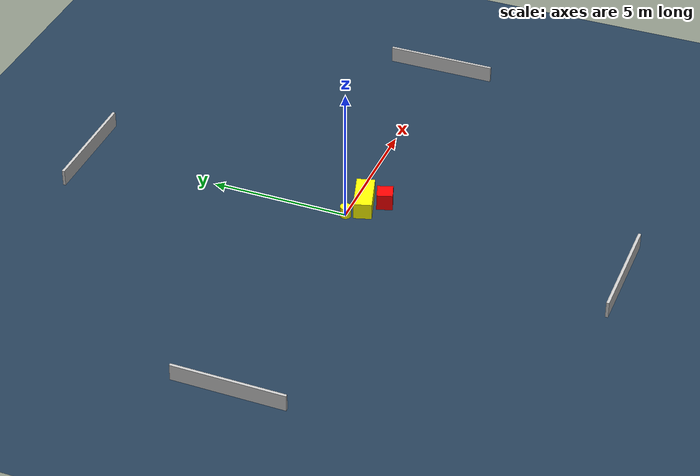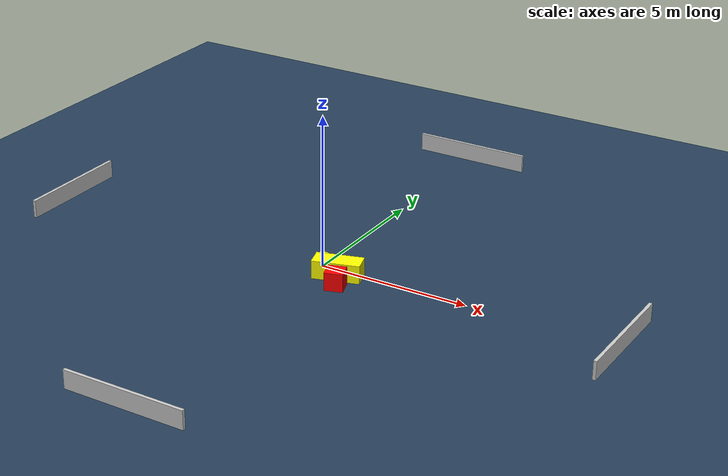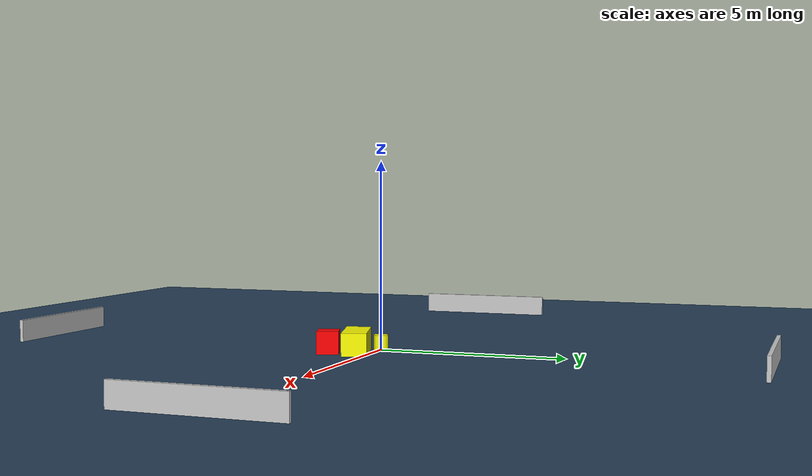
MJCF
<?xml version="1.0" ?>
<mujoco model="generated_environment">
  <option timestep="0.01" integrator="RK4" cone="elliptic"/>
  <default>
    <geom density="1"/>
  </default>
  <asset>
    <texture builtin="gradient" height="3072" name="skybox" rgb1="0.3 0.5 0.7" rgb2="0 0 0" type="skybox" width="512"/>
    <texture builtin="checker" height="300" name="groundplane" rgb1="0.2 0.3 0.4" rgb2="0.1 0.2 0.3" type="2d" width="300"/>
    <material name="groundplane" reflectance="0.2" texrepeat="5 5" texture="groundplane"/>
  </asset>
  <worldbody>
    <light dir="0 0 -1" directional="true" pos="0 0 1.5"/>
    <geom condim="3" friction="0.5 0.005 0.001" material="groundplane" name="floor" pos="0 0 0" size="0 0 0.05" type="plane"/>
    <body name="walls">
      <geom name="wall_1" condim="4" pos="-10.0 0.0 0.3" rgba="0.800000011920929 0.800000011920929 0.800000011920929 1.0" size="0.05 2.0 0.3" type="box"/>
      <geom name="wall_2" condim="4" pos="10.0 0.0 0.3" rgba="0.800000011920929 0.800000011920929 0.800000011920929 1.0" size="0.05 2.0 0.3" type="box"/>
      <geom name="wall_3" condim="4" pos="0.0 -10.0 0.3" rgba="0.800000011920929 0.800000011920929 0.800000011920929 1.0" size="2.0 0.05 0.3" type="box"/>
      <geom name="wall_4" condim="4" pos="0.0 10.0 0.3" rgba="0.800000011920929 0.800000011920929 0.800000011920929 1.0" size="2.0 0.05 0.3" type="box"/>
    </body>
    <body name="robot">
      <joint name="joint_x" type="slide" pos="0 0 0" axis="1 0 0"/>
      <joint name="joint_y" type="slide" pos="0 0 0" axis="0 1 0"/>
      <geom name="robot" type="cylinder" pos="0.0 0.0 0.2" size="0.2 0.2 0.0" mass="5.0" friction="1.0 0.005 0.0001" condim="4" rgba="1.0 1.0 0.0 1.0"/>
    </body>
    <body name="obstacle_1_movable">
      <geom name="obstacle_1_movable" condim="4" pos="0.7799657678024026 -0.39169430188205406 0.3" euler="0 0 16.513169403241783" friction="0.0 0.005 0.001" rgba="1.0 1.0 0.0 1.0" size="0.7663486641953956 0.32767700830561997 0.3" type="box" mass="0.1"/>
      <joint type="free"/>
    </body>
    <body name="obstacle_2_static">
      <geom name="obstacle_2_static" condim="4" pos="1.0951275068958408 -1.0523609837399963 0.3" euler="0 0 18.119662118468128" friction="0.0 0.005 0.001" rgba="1.0 0.0 0.0 1.0" size="0.2981449886946905 0.28461138365555116 0.3" type="box"/>
    </body>
  </worldbody>
  <actuator>
    <motor name="actuator_x" joint="joint_x" gear="1" ctrlrange="-1 1"/>
    <motor name="actuator_y" joint="joint_y" gear="1" ctrlrange="-1 1"/>
  </actuator>
</mujoco>
